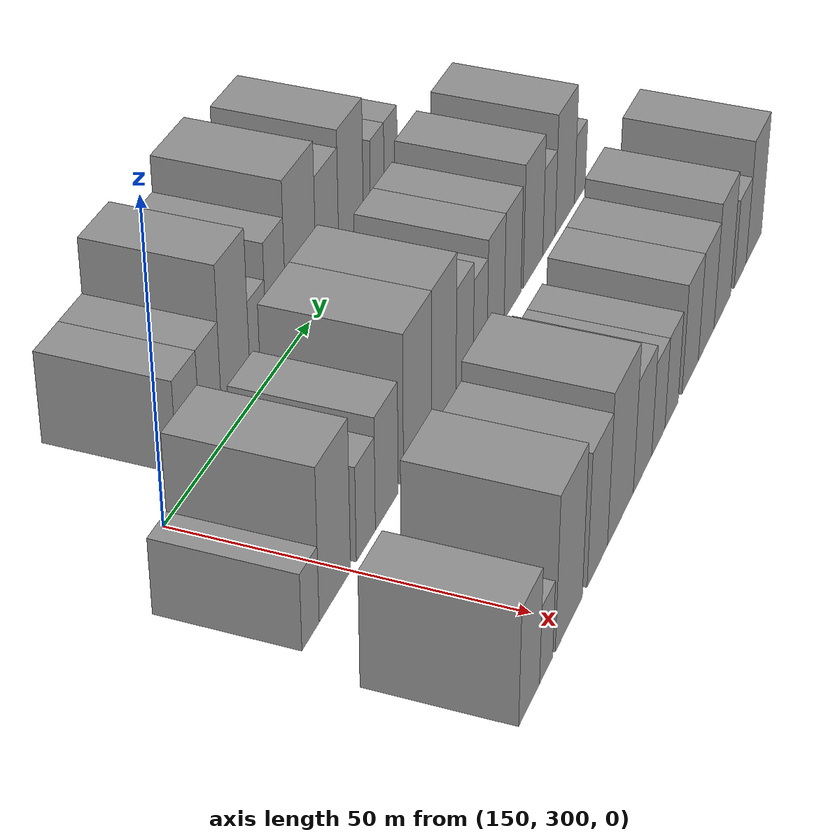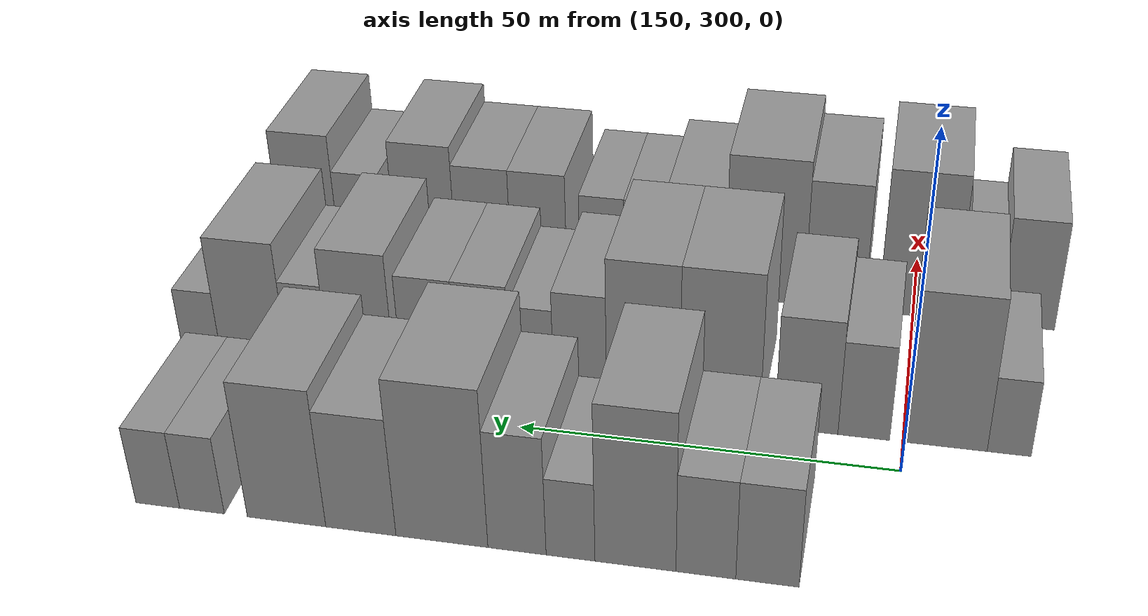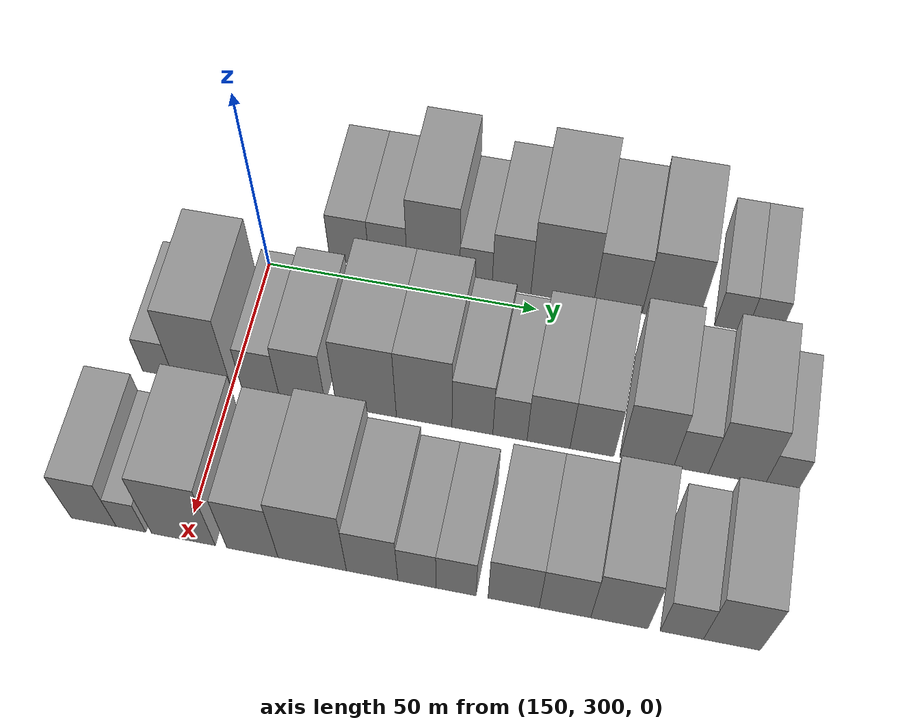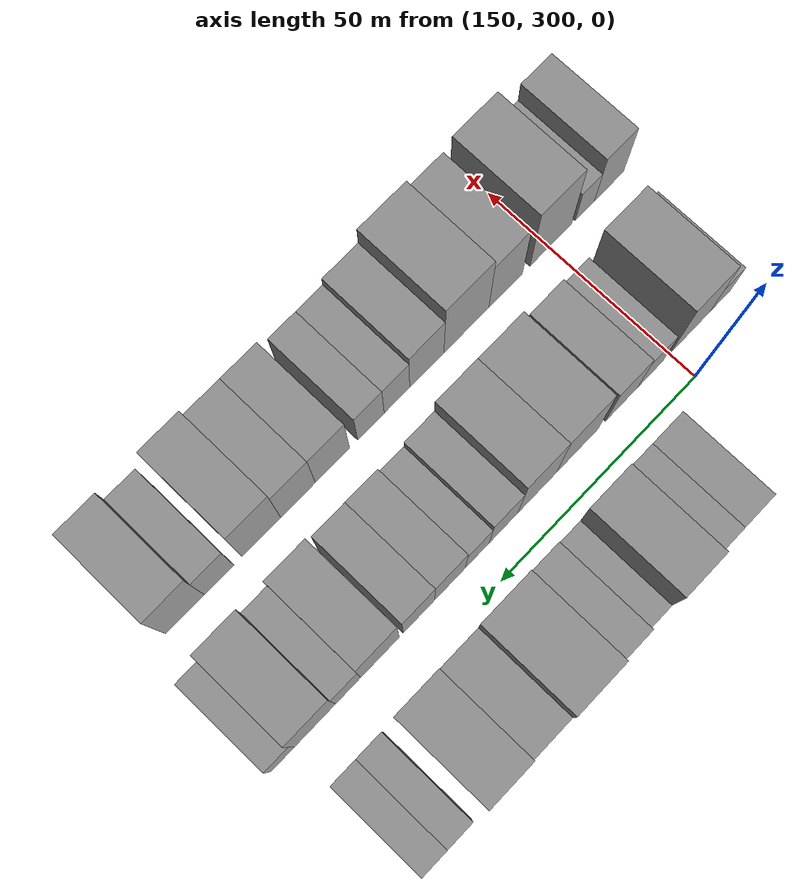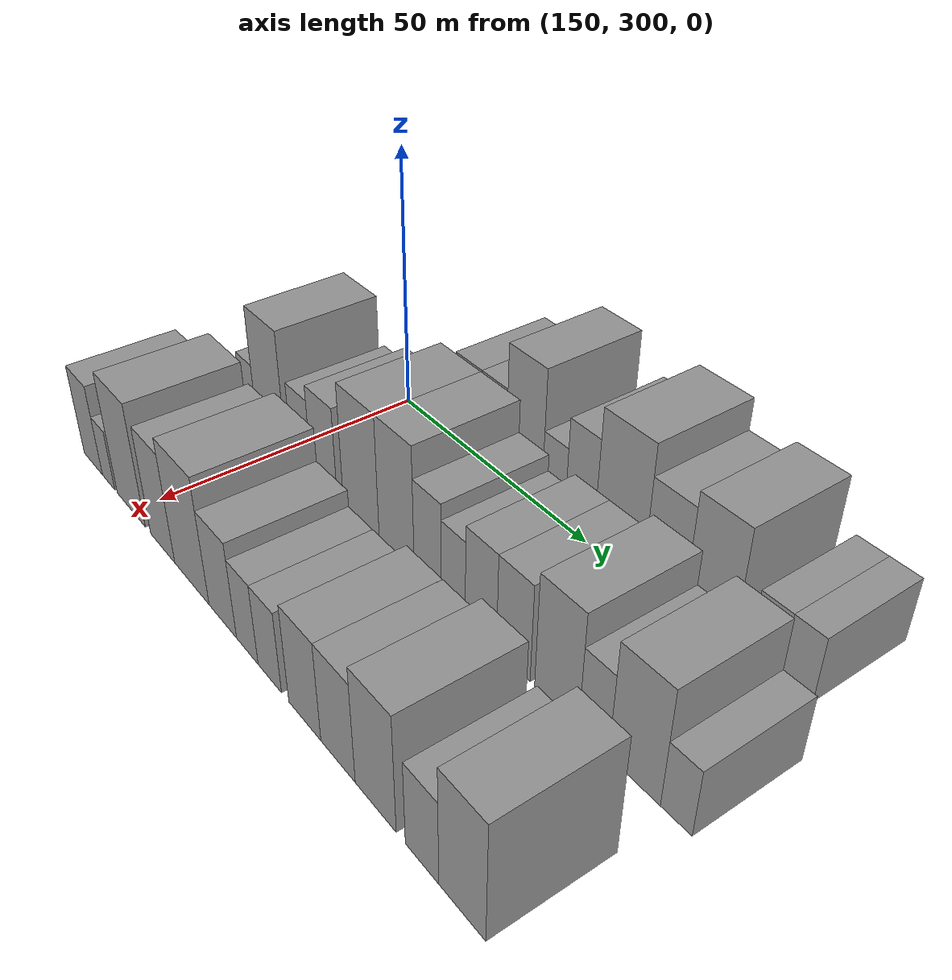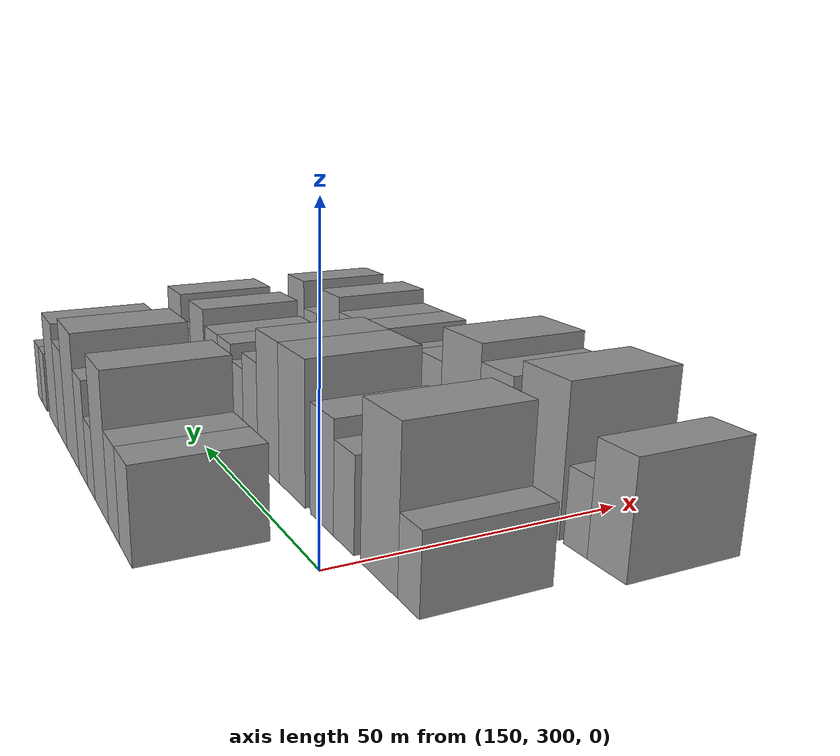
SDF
<sdf version="1.6">
 <world name="default">
  <model name="building_425">
   <static>1</static>
   <pose>137.0000 314.5640 0 0.000000 0.000000 0.000000</pose>
   <link name="link">
    <pose>0 0 7.50 0 0 0</pose>
    <collision name="collision"><geometry><box><size>20.0000 7.4914 15.0000</size></box></geometry></collision>
    <visual name="visual">
     <cast_shadows>0</cast_shadows>
     <geometry><box><size>20.0000 7.4914 15.0000</size></box></geometry>
     <material>
      <script>
       <uri>model://grey_wall/materials/scripts</uri>
       <uri>model://grey_wall/materials/textures</uri>
       <name>vrc/grey_wall</name>
      </script>
     </material>
    </visual>
   </link>
  </model>
  <model name="building_426">
   <static>1</static>
   <pose>137.0000 321.8882 0 0.000000 0.000000 0.000000</pose>
   <link name="link">
    <pose>0 0 7.50 0 0 0</pose>
    <collision name="collision"><geometry><box><size>20.0000 7.1569 15.0000</size></box></geometry></collision>
    <visual name="visual">
     <cast_shadows>0</cast_shadows>
     <geometry><box><size>20.0000 7.1569 15.0000</size></box></geometry>
     <material>
      <script>
       <uri>model://grey_wall/materials/scripts</uri>
       <uri>model://grey_wall/materials/textures</uri>
       <name>vrc/grey_wall</name>
      </script>
     </material>
    </visual>
   </link>
  </model>
  <model name="building_427">
   <static>1</static>
   <pose>137.0000 330.3693 0 0.000000 0.000000 0.000000</pose>
   <link name="link">
    <pose>0 0 12.00 0 0 0</pose>
    <collision name="collision"><geometry><box><size>20.0000 9.8052 24.0000</size></box></geometry></collision>
    <visual name="visual">
     <cast_shadows>0</cast_shadows>
     <geometry><box><size>20.0000 9.8052 24.0000</size></box></geometry>
     <material>
      <script>
       <uri>model://grey_wall/materials/scripts</uri>
       <uri>model://grey_wall/materials/textures</uri>
       <name>vrc/grey_wall</name>
      </script>
     </material>
    </visual>
   </link>
  </model>
  <model name="building_428">
   <static>1</static>
   <pose>137.0000 338.2673 0 0.000000 0.000000 0.000000</pose>
   <link name="link">
    <pose>0 0 6.00 0 0 0</pose>
    <collision name="collision"><geometry><box><size>20.0000 5.9908 12.0000</size></box></geometry></collision>
    <visual name="visual">
     <cast_shadows>0</cast_shadows>
     <geometry><box><size>20.0000 5.9908 12.0000</size></box></geometry>
     <material>
      <script>
       <uri>model://grey_wall/materials/scripts</uri>
       <uri>model://grey_wall/materials/textures</uri>
       <name>vrc/grey_wall</name>
      </script>
     </material>
    </visual>
   </link>
  </model>
  <model name="building_429">
   <static>1</static>
   <pose>137.0000 344.8664 0 0.000000 0.000000 0.000000</pose>
   <link name="link">
    <pose>0 0 9.00 0 0 0</pose>
    <collision name="collision"><geometry><box><size>20.0000 7.2075 18.0000</size></box></geometry></collision>
    <visual name="visual">
     <cast_shadows>0</cast_shadows>
     <geometry><box><size>20.0000 7.2075 18.0000</size></box></geometry>
     <material>
      <script>
       <uri>model://grey_wall/materials/scripts</uri>
       <uri>model://grey_wall/materials/textures</uri>
       <name>vrc/grey_wall</name>
      </script>
     </material>
    </visual>
   </link>
  </model>
  <model name="building_430">
   <static>1</static>
   <pose>137.0000 354.2401 0 0.000000 0.000000 0.000000</pose>
   <link name="link">
    <pose>0 0 12.00 0 0 0</pose>
    <collision name="collision"><geometry><box><size>20.0000 11.5398 24.0000</size></box></geometry></collision>
    <visual name="visual">
     <cast_shadows>0</cast_shadows>
     <geometry><box><size>20.0000 11.5398 24.0000</size></box></geometry>
     <material>
      <script>
       <uri>model://grey_wall/materials/scripts</uri>
       <uri>model://grey_wall/materials/textures</uri>
       <name>vrc/grey_wall</name>
      </script>
     </material>
    </visual>
   </link>
  </model>
  <model name="building_431">
   <static>1</static>
   <pose>137.0000 364.4803 0 0.000000 0.000000 0.000000</pose>
   <link name="link">
    <pose>0 0 9.00 0 0 0</pose>
    <collision name="collision"><geometry><box><size>20.0000 8.9406 18.0000</size></box></geometry></collision>
    <visual name="visual">
     <cast_shadows>0</cast_shadows>
     <geometry><box><size>20.0000 8.9406 18.0000</size></box></geometry>
     <material>
      <script>
       <uri>model://grey_wall/materials/scripts</uri>
       <uri>model://grey_wall/materials/textures</uri>
       <name>vrc/grey_wall</name>
      </script>
     </material>
    </visual>
   </link>
  </model>
  <model name="building_432">
   <static>1</static>
   <pose>137.0000 374.0205 0 0.000000 0.000000 0.000000</pose>
   <link name="link">
    <pose>0 0 10.50 0 0 0</pose>
    <collision name="collision"><geometry><box><size>20.0000 10.1398 21.0000</size></box></geometry></collision>
    <visual name="visual">
     <cast_shadows>0</cast_shadows>
     <geometry><box><size>20.0000 10.1398 21.0000</size></box></geometry>
     <material>
      <script>
       <uri>model://grey_wall/materials/scripts</uri>
       <uri>model://grey_wall/materials/textures</uri>
       <name>vrc/grey_wall</name>
      </script>
     </material>
    </visual>
   </link>
  </model>
  <model name="building_433">
   <static>1</static>
   <pose>137.0000 385.0227 0 0.000000 0.000000 0.000000</pose>
   <link name="link">
    <pose>0 0 6.00 0 0 0</pose>
    <collision name="collision"><geometry><box><size>20.0000 5.8645 12.0000</size></box></geometry></collision>
    <visual name="visual">
     <cast_shadows>0</cast_shadows>
     <geometry><box><size>20.0000 5.8645 12.0000</size></box></geometry>
     <material>
      <script>
       <uri>model://grey_wall/materials/scripts</uri>
       <uri>model://grey_wall/materials/textures</uri>
       <name>vrc/grey_wall</name>
      </script>
     </material>
    </visual>
   </link>
  </model>
  <model name="building_434">
   <static>1</static>
   <pose>137.0000 390.8449 0 0.000000 0.000000 0.000000</pose>
   <link name="link">
    <pose>0 0 6.00 0 0 0</pose>
    <collision name="collision"><geometry><box><size>20.0000 5.7800 12.0000</size></box></geometry></collision>
    <visual name="visual">
     <cast_shadows>0</cast_shadows>
     <geometry><box><size>20.0000 5.7800 12.0000</size></box></geometry>
     <material>
      <script>
       <uri>model://grey_wall/materials/scripts</uri>
       <uri>model://grey_wall/materials/textures</uri>
       <name>vrc/grey_wall</name>
      </script>
     </material>
    </visual>
   </link>
  </model>
  <model name="building_537">
   <static>1</static>
   <pose>166.0000 286.4531 0 0.000000 0.000000 0.000000</pose>
   <link name="link">
    <pose>0 0 6.00 0 0 0</pose>
    <collision name="collision"><geometry><box><size>20.0000 5.6103 12.0000</size></box></geometry></collision>
    <visual name="visual">
     <cast_shadows>0</cast_shadows>
     <geometry><box><size>20.0000 5.6103 12.0000</size></box></geometry>
     <material>
      <script>
       <uri>model://grey_wall/materials/scripts</uri>
       <uri>model://grey_wall/materials/textures</uri>
       <name>vrc/grey_wall</name>
      </script>
     </material>
    </visual>
   </link>
  </model>
  <model name="building_538">
   <static>1</static>
   <pose>166.0000 294.5525 0 0.000000 0.000000 0.000000</pose>
   <link name="link">
    <pose>0 0 12.00 0 0 0</pose>
    <collision name="collision"><geometry><box><size>20.0000 10.5884 24.0000</size></box></geometry></collision>
    <visual name="visual">
     <cast_shadows>0</cast_shadows>
     <geometry><box><size>20.0000 10.5884 24.0000</size></box></geometry>
     <material>
      <script>
       <uri>model://grey_wall/materials/scripts</uri>
       <uri>model://grey_wall/materials/textures</uri>
       <name>vrc/grey_wall</name>
      </script>
     </material>
    </visual>
   </link>
  </model>
  <model name="building_539">
   <static>1</static>
   <pose>166.0000 305.2228 0 0.000000 0.000000 0.000000</pose>
   <link name="link">
    <pose>0 0 7.50 0 0 0</pose>
    <collision name="collision"><geometry><box><size>20.0000 6.7522 15.0000</size></box></geometry></collision>
    <visual name="visual">
     <cast_shadows>0</cast_shadows>
     <geometry><box><size>20.0000 6.7522 15.0000</size></box></geometry>
     <material>
      <script>
       <uri>model://grey_wall/materials/scripts</uri>
       <uri>model://grey_wall/materials/textures</uri>
       <name>vrc/grey_wall</name>
      </script>
     </material>
    </visual>
   </link>
  </model>
  <model name="building_540">
   <static>1</static>
   <pose>166.0000 312.7634 0 0.000000 0.000000 0.000000</pose>
   <link name="link">
    <pose>0 0 9.00 0 0 0</pose>
    <collision name="collision"><geometry><box><size>20.0000 8.3290 18.0000</size></box></geometry></collision>
    <visual name="visual">
     <cast_shadows>0</cast_shadows>
     <geometry><box><size>20.0000 8.3290 18.0000</size></box></geometry>
     <material>
      <script>
       <uri>model://grey_wall/materials/scripts</uri>
       <uri>model://grey_wall/materials/textures</uri>
       <name>vrc/grey_wall</name>
      </script>
     </material>
    </visual>
   </link>
  </model>
  <model name="building_541">
   <static>1</static>
   <pose>166.0000 324.3075 0 0.000000 0.000000 0.000000</pose>
   <link name="link">
    <pose>0 0 12.00 0 0 0</pose>
    <collision name="collision"><geometry><box><size>20.0000 10.7593 24.0000</size></box></geometry></collision>
    <visual name="visual">
     <cast_shadows>0</cast_shadows>
     <geometry><box><size>20.0000 10.7593 24.0000</size></box></geometry>
     <material>
      <script>
       <uri>model://grey_wall/materials/scripts</uri>
       <uri>model://grey_wall/materials/textures</uri>
       <name>vrc/grey_wall</name>
      </script>
     </material>
    </visual>
   </link>
  </model>
  <model name="building_542">
   <static>1</static>
   <pose>166.0000 334.6249 0 0.000000 0.000000 0.000000</pose>
   <link name="link">
    <pose>0 0 12.00 0 0 0</pose>
    <collision name="collision"><geometry><box><size>20.0000 9.8756 24.0000</size></box></geometry></collision>
    <visual name="visual">
     <cast_shadows>0</cast_shadows>
     <geometry><box><size>20.0000 9.8756 24.0000</size></box></geometry>
     <material>
      <script>
       <uri>model://grey_wall/materials/scripts</uri>
       <uri>model://grey_wall/materials/textures</uri>
       <name>vrc/grey_wall</name>
      </script>
     </material>
    </visual>
   </link>
  </model>
  <model name="building_543">
   <static>1</static>
   <pose>166.0000 343.1630 0 0.000000 0.000000 0.000000</pose>
   <link name="link">
    <pose>0 0 9.00 0 0 0</pose>
    <collision name="collision"><geometry><box><size>20.0000 7.2007 18.0000</size></box></geometry></collision>
    <visual name="visual">
     <cast_shadows>0</cast_shadows>
     <geometry><box><size>20.0000 7.2007 18.0000</size></box></geometry>
     <material>
      <script>
       <uri>model://grey_wall/materials/scripts</uri>
       <uri>model://grey_wall/materials/textures</uri>
       <name>vrc/grey_wall</name>
      </script>
     </material>
    </visual>
   </link>
  </model>
  <model name="building_544">
   <static>1</static>
   <pose>166.0000 349.7685 0 0.000000 0.000000 0.000000</pose>
   <link name="link">
    <pose>0 0 7.50 0 0 0</pose>
    <collision name="collision"><geometry><box><size>20.0000 6.0102 15.0000</size></box></geometry></collision>
    <visual name="visual">
     <cast_shadows>0</cast_shadows>
     <geometry><box><size>20.0000 6.0102 15.0000</size></box></geometry>
     <material>
      <script>
       <uri>model://grey_wall/materials/scripts</uri>
       <uri>model://grey_wall/materials/textures</uri>
       <name>vrc/grey_wall</name>
      </script>
     </material>
    </visual>
   </link>
  </model>
  <model name="building_545">
   <static>1</static>
   <pose>166.0000 356.5333 0 0.000000 0.000000 0.000000</pose>
   <link name="link">
    <pose>0 0 9.00 0 0 0</pose>
    <collision name="collision"><geometry><box><size>20.0000 7.5193 18.0000</size></box></geometry></collision>
    <visual name="visual">
     <cast_shadows>0</cast_shadows>
     <geometry><box><size>20.0000 7.5193 18.0000</size></box></geometry>
     <material>
      <script>
       <uri>model://grey_wall/materials/scripts</uri>
       <uri>model://grey_wall/materials/textures</uri>
       <name>vrc/grey_wall</name>
      </script>
     </material>
    </visual>
   </link>
  </model>
  <model name="building_546">
   <static>1</static>
   <pose>166.0000 364.1255 0 0.000000 0.000000 0.000000</pose>
   <link name="link">
    <pose>0 0 9.00 0 0 0</pose>
    <collision name="collision"><geometry><box><size>20.0000 7.6651 18.0000</size></box></geometry></collision>
    <visual name="visual">
     <cast_shadows>0</cast_shadows>
     <geometry><box><size>20.0000 7.6651 18.0000</size></box></geometry>
     <material>
      <script>
       <uri>model://grey_wall/materials/scripts</uri>
       <uri>model://grey_wall/materials/textures</uri>
       <name>vrc/grey_wall</name>
      </script>
     </material>
    </visual>
   </link>
  </model>
  <model name="building_547">
   <static>1</static>
   <pose>166.0000 373.6065 0 0.000000 0.000000 0.000000</pose>
   <link name="link">
    <pose>0 0 10.50 0 0 0</pose>
    <collision name="collision"><geometry><box><size>20.0000 9.2970 21.0000</size></box></geometry></collision>
    <visual name="visual">
     <cast_shadows>0</cast_shadows>
     <geometry><box><size>20.0000 9.2970 21.0000</size></box></geometry>
     <material>
      <script>
       <uri>model://grey_wall/materials/scripts</uri>
       <uri>model://grey_wall/materials/textures</uri>
       <name>vrc/grey_wall</name>
      </script>
     </material>
    </visual>
   </link>
  </model>
  <model name="building_548">
   <static>1</static>
   <pose>166.0000 381.2584 0 0.000000 0.000000 0.000000</pose>
   <link name="link">
    <pose>0 0 7.50 0 0 0</pose>
    <collision name="collision"><geometry><box><size>20.0000 6.0067 15.0000</size></box></geometry></collision>
    <visual name="visual">
     <cast_shadows>0</cast_shadows>
     <geometry><box><size>20.0000 6.0067 15.0000</size></box></geometry>
     <material>
      <script>
       <uri>model://grey_wall/materials/scripts</uri>
       <uri>model://grey_wall/materials/textures</uri>
       <name>vrc/grey_wall</name>
      </script>
     </material>
    </visual>
   </link>
  </model>
  <model name="building_549">
   <static>1</static>
   <pose>166.0000 389.1217 0 0.000000 0.000000 0.000000</pose>
   <link name="link">
    <pose>0 0 10.50 0 0 0</pose>
    <collision name="collision"><geometry><box><size>20.0000 9.7200 21.0000</size></box></geometry></collision>
    <visual name="visual">
     <cast_shadows>0</cast_shadows>
     <geometry><box><size>20.0000 9.7200 21.0000</size></box></geometry>
     <material>
      <script>
       <uri>model://grey_wall/materials/scripts</uri>
       <uri>model://grey_wall/materials/textures</uri>
       <name>vrc/grey_wall</name>
      </script>
     </material>
    </visual>
   </link>
  </model>
  <model name="building_550">
   <static>1</static>
   <pose>166.0000 396.7816 0 0.000000 0.000000 0.000000</pose>
   <link name="link">
    <pose>0 0 6.00 0 0 0</pose>
    <collision name="collision"><geometry><box><size>20.0000 5.5998 12.0000</size></box></geometry></collision>
    <visual name="visual">
     <cast_shadows>0</cast_shadows>
     <geometry><box><size>20.0000 5.5998 12.0000</size></box></geometry>
     <material>
      <script>
       <uri>model://grey_wall/materials/scripts</uri>
       <uri>model://grey_wall/materials/textures</uri>
       <name>vrc/grey_wall</name>
      </script>
     </material>
    </visual>
   </link>
  </model>
  <model name="building_648">
   <static>1</static>
   <pose>195.0000 283.9424 0 0.000000 0.000000 0.000000</pose>
   <link name="link">
    <pose>0 0 9.00 0 0 0</pose>
    <collision name="collision"><geometry><box><size>20.0000 7.8935 18.0000</size></box></geometry></collision>
    <visual name="visual">
     <cast_shadows>0</cast_shadows>
     <geometry><box><size>20.0000 7.8935 18.0000</size></box></geometry>
     <material>
      <script>
       <uri>model://grey_wall/materials/scripts</uri>
       <uri>model://grey_wall/materials/textures</uri>
       <name>vrc/grey_wall</name>
      </script>
     </material>
    </visual>
   </link>
  </model>
  <model name="building_649">
   <static>1</static>
   <pose>195.0000 290.4695 0 0.000000 0.000000 0.000000</pose>
   <link name="link">
    <pose>0 0 6.00 0 0 0</pose>
    <collision name="collision"><geometry><box><size>20.0000 5.1607 12.0000</size></box></geometry></collision>
    <visual name="visual">
     <cast_shadows>0</cast_shadows>
     <geometry><box><size>20.0000 5.1607 12.0000</size></box></geometry>
     <material>
      <script>
       <uri>model://grey_wall/materials/scripts</uri>
       <uri>model://grey_wall/materials/textures</uri>
       <name>vrc/grey_wall</name>
      </script>
     </material>
    </visual>
   </link>
  </model>
  <model name="building_650">
   <static>1</static>
   <pose>195.0000 299.5684 0 0.000000 0.000000 0.000000</pose>
   <link name="link">
    <pose>0 0 12.00 0 0 0</pose>
    <collision name="collision"><geometry><box><size>20.0000 11.0371 24.0000</size></box></geometry></collision>
    <visual name="visual">
     <cast_shadows>0</cast_shadows>
     <geometry><box><size>20.0000 11.0371 24.0000</size></box></geometry>
     <material>
      <script>
       <uri>model://grey_wall/materials/scripts</uri>
       <uri>model://grey_wall/materials/textures</uri>
       <name>vrc/grey_wall</name>
      </script>
     </material>
    </visual>
   </link>
  </model>
  <model name="building_651">
   <static>1</static>
   <pose>195.0000 311.4898 0 0.000000 0.000000 0.000000</pose>
   <link name="link">
    <pose>0 0 10.50 0 0 0</pose>
    <collision name="collision"><geometry><box><size>20.0000 8.8057 21.0000</size></box></geometry></collision>
    <visual name="visual">
     <cast_shadows>0</cast_shadows>
     <geometry><box><size>20.0000 8.8057 21.0000</size></box></geometry>
     <material>
      <script>
       <uri>model://grey_wall/materials/scripts</uri>
       <uri>model://grey_wall/materials/textures</uri>
       <name>vrc/grey_wall</name>
      </script>
     </material>
    </visual>
   </link>
  </model>
  <model name="building_652">
   <static>1</static>
   <pose>195.0000 321.7132 0 0.000000 0.000000 0.000000</pose>
   <link name="link">
    <pose>0 0 12.00 0 0 0</pose>
    <collision name="collision"><geometry><box><size>20.0000 11.6411 24.0000</size></box></geometry></collision>
    <visual name="visual">
     <cast_shadows>0</cast_shadows>
     <geometry><box><size>20.0000 11.6411 24.0000</size></box></geometry>
     <material>
      <script>
       <uri>model://grey_wall/materials/scripts</uri>
       <uri>model://grey_wall/materials/textures</uri>
       <name>vrc/grey_wall</name>
      </script>
     </material>
    </visual>
   </link>
  </model>
  <model name="building_653">
   <static>1</static>
   <pose>195.0000 331.8812 0 0.000000 0.000000 0.000000</pose>
   <link name="link">
    <pose>0 0 9.00 0 0 0</pose>
    <collision name="collision"><geometry><box><size>20.0000 8.6950 18.0000</size></box></geometry></collision>
    <visual name="visual">
     <cast_shadows>0</cast_shadows>
     <geometry><box><size>20.0000 8.6950 18.0000</size></box></geometry>
     <material>
      <script>
       <uri>model://grey_wall/materials/scripts</uri>
       <uri>model://grey_wall/materials/textures</uri>
       <name>vrc/grey_wall</name>
      </script>
     </material>
    </visual>
   </link>
  </model>
  <model name="building_654">
   <static>1</static>
   <pose>195.0000 339.4538 0 0.000000 0.000000 0.000000</pose>
   <link name="link">
    <pose>0 0 7.50 0 0 0</pose>
    <collision name="collision"><geometry><box><size>20.0000 6.4502 15.0000</size></box></geometry></collision>
    <visual name="visual">
     <cast_shadows>0</cast_shadows>
     <geometry><box><size>20.0000 6.4502 15.0000</size></box></geometry>
     <material>
      <script>
       <uri>model://grey_wall/materials/scripts</uri>
       <uri>model://grey_wall/materials/textures</uri>
       <name>vrc/grey_wall</name>
      </script>
     </material>
    </visual>
   </link>
  </model>
  <model name="building_655">
   <static>1</static>
   <pose>195.0000 346.0007 0 0.000000 0.000000 0.000000</pose>
   <link name="link">
    <pose>0 0 7.50 0 0 0</pose>
    <collision name="collision"><geometry><box><size>20.0000 6.6434 15.0000</size></box></geometry></collision>
    <visual name="visual">
     <cast_shadows>0</cast_shadows>
     <geometry><box><size>20.0000 6.6434 15.0000</size></box></geometry>
     <material>
      <script>
       <uri>model://grey_wall/materials/scripts</uri>
       <uri>model://grey_wall/materials/textures</uri>
       <name>vrc/grey_wall</name>
      </script>
     </material>
    </visual>
   </link>
  </model>
  <model name="building_656">
   <static>1</static>
   <pose>195.0000 355.5701 0 0.000000 0.000000 0.000000</pose>
   <link name="link">
    <pose>0 0 9.00 0 0 0</pose>
    <collision name="collision"><geometry><box><size>20.0000 8.4955 18.0000</size></box></geometry></collision>
    <visual name="visual">
     <cast_shadows>0</cast_shadows>
     <geometry><box><size>20.0000 8.4955 18.0000</size></box></geometry>
     <material>
      <script>
       <uri>model://grey_wall/materials/scripts</uri>
       <uri>model://grey_wall/materials/textures</uri>
       <name>vrc/grey_wall</name>
      </script>
     </material>
    </visual>
   </link>
  </model>
  <model name="building_657">
   <static>1</static>
   <pose>195.0000 364.0604 0 0.000000 0.000000 0.000000</pose>
   <link name="link">
    <pose>0 0 9.00 0 0 0</pose>
    <collision name="collision"><geometry><box><size>20.0000 8.4850 18.0000</size></box></geometry></collision>
    <visual name="visual">
     <cast_shadows>0</cast_shadows>
     <geometry><box><size>20.0000 8.4850 18.0000</size></box></geometry>
     <material>
      <script>
       <uri>model://grey_wall/materials/scripts</uri>
       <uri>model://grey_wall/materials/textures</uri>
       <name>vrc/grey_wall</name>
      </script>
     </material>
    </visual>
   </link>
  </model>
  <model name="building_658">
   <static>1</static>
   <pose>195.0000 372.9950 0 0.000000 0.000000 0.000000</pose>
   <link name="link">
    <pose>0 0 10.50 0 0 0</pose>
    <collision name="collision"><geometry><box><size>20.0000 9.3841 21.0000</size></box></geometry></collision>
    <visual name="visual">
     <cast_shadows>0</cast_shadows>
     <geometry><box><size>20.0000 9.3841 21.0000</size></box></geometry>
     <material>
      <script>
       <uri>model://grey_wall/materials/scripts</uri>
       <uri>model://grey_wall/materials/textures</uri>
       <name>vrc/grey_wall</name>
      </script>
     </material>
    </visual>
   </link>
  </model>
  <model name="building_659">
   <static>1</static>
   <pose>195.0000 383.1984 0 0.000000 0.000000 0.000000</pose>
   <link name="link">
    <pose>0 0 7.50 0 0 0</pose>
    <collision name="collision"><geometry><box><size>20.0000 7.0227 15.0000</size></box></geometry></collision>
    <visual name="visual">
     <cast_shadows>0</cast_shadows>
     <geometry><box><size>20.0000 7.0227 15.0000</size></box></geometry>
     <material>
      <script>
       <uri>model://grey_wall/materials/scripts</uri>
       <uri>model://grey_wall/materials/textures</uri>
       <name>vrc/grey_wall</name>
      </script>
     </material>
    </visual>
   </link>
  </model>
  <model name="building_660">
   <static>1</static>
   <pose>195.0000 391.2989 0 0.000000 0.000000 0.000000</pose>
   <link name="link">
    <pose>0 0 10.50 0 0 0</pose>
    <collision name="collision"><geometry><box><size>20.0000 9.1782 21.0000</size></box></geometry></collision>
    <visual name="visual">
     <cast_shadows>0</cast_shadows>
     <geometry><box><size>20.0000 9.1782 21.0000</size></box></geometry>
     <material>
      <script>
       <uri>model://grey_wall/materials/scripts</uri>
       <uri>model://grey_wall/materials/textures</uri>
       <name>vrc/grey_wall</name>
      </script>
     </material>
    </visual>
   </link>
  </model>
 </world>
</sdf>
